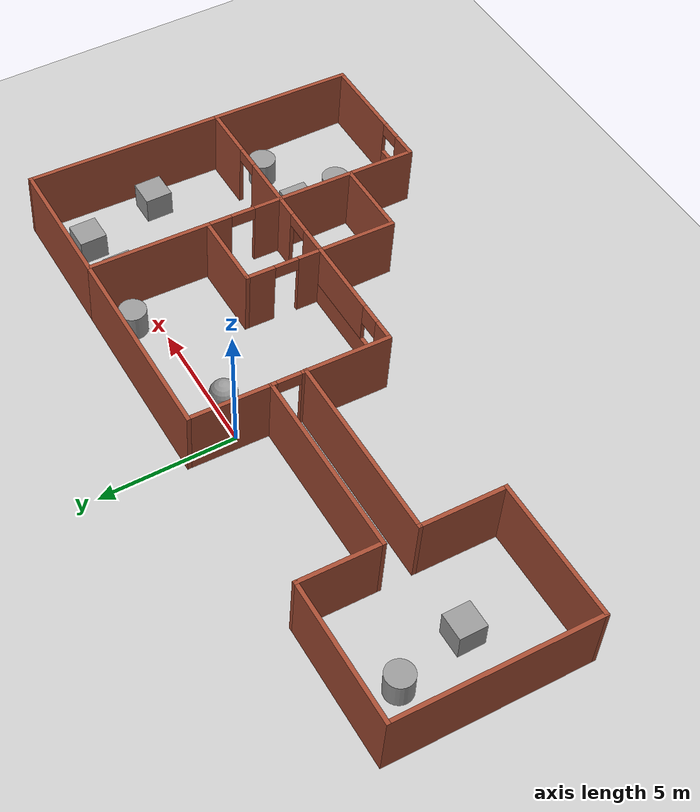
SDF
<sdf version="1.6">
 <world name="default">
  <light name="sun" type="directional">
   <pose>0 0 10 0 -0 0</pose>
   <diffuse>0.8 0.8 0.8 1</diffuse>
   <specular>0.2 0.2 0.2 1</specular>
   <attenuation>
    <range>1000</range>
    <constant>0.9</constant>
    <linear>0.01</linear>
    <quadratic>0.001</quadratic>
   </attenuation>
   <direction>-0.5 0.1 -0.9</direction>
  </light>
  <model name="ground_plane">
   <static>1</static>
   <link name="link">
    <collision name="collision">
     <geometry><plane><normal>0 0 1</normal><size>100 100</size></plane></geometry>
     <surface>
      <contact><collide_bitmask>65535</collide_bitmask></contact>
      <friction><ode><mu>100</mu><mu2>50</mu2></ode></friction>
     </surface>
    </collision>
    <visual name="visual">
     <cast_shadows>0</cast_shadows>
     <geometry><plane><normal>0 0 1</normal><size>100 100</size></plane></geometry>
     <material>
      <script><uri>file://media/materials/scripts/gazebo.material</uri><name>Gazebo/Grey</name></script>
     </material>
    </visual>
   </link>
  </model>
  <gravity>0 0 -9.8</gravity>
  <magnetic_field>6e-06 2.3e-05 -4.2e-05</magnetic_field>
  <atmosphere type="adiabatic"/>
  <physics name="default_physics" default="0" type="ode">
   <max_step_size>0.001</max_step_size>
   <real_time_factor>1</real_time_factor>
   <real_time_update_rate>1000</real_time_update_rate>
  </physics>
  <scene><ambient>0.4 0.4 0.4 1</ambient><background>0.7 0.7 0.7 1</background><shadows>1</shadows></scene>
  <audio><device>default</device></audio>
  <spherical_coordinates>
   <surface_model>EARTH_WGS84</surface_model>
   <latitude_deg>0</latitude_deg>
   <longitude_deg>0</longitude_deg>
   <elevation>0</elevation>
   <heading_deg>0</heading_deg>
  </spherical_coordinates>
  <model name="House3">
   <pose>-0.3078 -4.39712 0 0.036863 -0 0</pose>
   <link name="Wall_0">
    <collision name="Wall_0_Collision">
     <geometry><box><size>7.5 0.15 2.5</size></box></geometry>
     <pose>0 0 1.25 0 -0 0</pose>
    </collision>
    <visual name="Wall_0_Visual">
     <pose>0 0 1.25 0 -0 0</pose>
     <geometry><box><size>7.5 0.15 2.5</size></box></geometry>
     <material>
      <script><uri>file://media/materials/scripts/gazebo.material</uri><name>Gazebo/Bricks</name></script>
      <ambient>1 1 1 1</ambient>
     </material>
     <meta><layer>0</layer></meta>
    </visual>
    <pose>12.0775 2.675 0 0 -0 -1.5708</pose>
   </link>
   <link name="Wall_10">
    <pose>3.55254 -1 0 0 -0 0</pose>
    <visual name="Wall_10_Visual_0">
     <pose>-3.3325 0 1.25 0 -0 0</pose>
     <geometry><box><size>0.835 0.15 2.5</size></box></geometry>
     <material>
      <script><uri>file://media/materials/scripts/gazebo.material</uri><name>Gazebo/Bricks</name></script>
      <ambient>1 1 1 1</ambient>
     </material>
     <meta><layer>0</layer></meta>
    </visual>
    <collision name="Wall_10_Collision_0">
     <geometry><box><size>0.835 0.15 2.5</size></box></geometry>
     <pose>-3.3325 0 1.25 0 -0 0</pose>
    </collision>
    <visual name="Wall_10_Visual_1">
     <pose>3.2675 0 1.25 0 -0 0</pose>
     <geometry><box><size>0.965 0.15 2.5</size></box></geometry>
     <material>
      <script><uri>file://media/materials/scripts/gazebo.material</uri><name>Gazebo/Bricks</name></script>
      <ambient>1 1 1 1</ambient>
     </material>
     <meta><layer>0</layer></meta>
    </visual>
    <collision name="Wall_10_Collision_1">
     <geometry><box><size>0.965 0.15 2.5</size></box></geometry>
     <pose>3.2675 0 1.25 0 -0 0</pose>
    </collision>
    <visual name="Wall_10_Visual_2">
     <pose>-0.515 0 0.45 0 -0 0</pose>
     <geometry><box><size>4.8 0.15 0.9</size></box></geometry>
     <material>
      <script><uri>file://media/materials/scripts/gazebo.material</uri><name>Gazebo/Bricks</name></script>
      <ambient>1 1 1 1</ambient>
     </material>
     <meta><layer>0</layer></meta>
    </visual>
    <collision name="Wall_10_Collision_2">
     <geometry><box><size>4.8 0.15 0.9</size></box></geometry>
     <pose>-0.515 0 0.45 0 -0 0</pose>
    </collision>
    <visual name="Wall_10_Visual_3">
     <pose>-0.115 0 1.7 0 -0 0</pose>
     <geometry><box><size>4 0.15 1.6</size></box></geometry>
     <material>
      <script><uri>file://media/materials/scripts/gazebo.material</uri><name>Gazebo/Bricks</name></script>
      <ambient>1 1 1 1</ambient>
     </material>
     <meta><layer>0</layer></meta>
    </visual>
    <collision name="Wall_10_Collision_3">
     <geometry><box><size>4 0.15 1.6</size></box></geometry>
     <pose>-0.115 0 1.7 0 -0 0</pose>
    </collision>
    <visual name="Wall_10_Visual_4">
     <pose>-2.515 0 2.1 0 -0 0</pose>
     <geometry><box><size>0.8 0.15 0.8</size></box></geometry>
     <material>
      <script><uri>file://media/materials/scripts/gazebo.material</uri><name>Gazebo/Bricks</name></script>
      <ambient>1 1 1 1</ambient>
     </material>
     <meta><layer>0</layer></meta>
    </visual>
    <collision name="Wall_10_Collision_4">
     <geometry><box><size>0.8 0.15 0.8</size></box></geometry>
     <pose>-2.515 0 2.1 0 -0 0</pose>
    </collision>
    <visual name="Wall_10_Visual_5">
     <pose>2.335 0 2.25 0 -0 0</pose>
     <geometry><box><size>0.9 0.15 0.5</size></box></geometry>
     <material>
      <script><uri>file://media/materials/scripts/gazebo.material</uri><name>Gazebo/Bricks</name></script>
      <ambient>1 1 1 1</ambient>
     </material>
     <meta><layer>0</layer></meta>
    </visual>
    <collision name="Wall_10_Collision_5">
     <geometry><box><size>0.9 0.15 0.5</size></box></geometry>
     <pose>2.335 0 2.25 0 -0 0</pose>
    </collision>
   </link>
   <link name="Wall_14">
    <pose>7.22753 0.425 0 0 -0 1.5708</pose>
    <visual name="Wall_14_Visual_0">
     <pose>-0.9425 0 1.25 0 -0 0</pose>
     <geometry><box><size>1.115 0.15 2.5</size></box></geometry>
     <material>
      <script><uri>file://media/materials/scripts/gazebo.material</uri><name>Gazebo/Bricks</name></script>
      <ambient>1 1 1 1</ambient>
     </material>
     <meta><layer>0</layer></meta>
    </visual>
    <collision name="Wall_14_Collision_0">
     <geometry><box><size>1.115 0.15 2.5</size></box></geometry>
     <pose>-0.9425 0 1.25 0 -0 0</pose>
    </collision>
    <visual name="Wall_14_Visual_1">
     <pose>1.0075 0 1.25 0 -0 0</pose>
     <geometry><box><size>0.985 0.15 2.5</size></box></geometry>
     <material>
      <script><uri>file://media/materials/scripts/gazebo.material</uri><name>Gazebo/Bricks</name></script>
      <ambient>1 1 1 1</ambient>
     </material>
     <meta><layer>0</layer></meta>
    </visual>
    <collision name="Wall_14_Collision_1">
     <geometry><box><size>0.985 0.15 2.5</size></box></geometry>
     <pose>1.0075 0 1.25 0 -0 0</pose>
    </collision>
    <visual name="Wall_14_Visual_2">
     <pose>0.065 0 2.25 0 -0 0</pose>
     <geometry><box><size>0.9 0.15 0.5</size></box></geometry>
     <material>
      <script><uri>file://media/materials/scripts/gazebo.material</uri><name>Gazebo/Bricks</name></script>
      <ambient>1 1 1 1</ambient>
     </material>
     <meta><layer>0</layer></meta>
    </visual>
    <collision name="Wall_14_Collision_2">
     <geometry><box><size>0.9 0.15 0.5</size></box></geometry>
     <pose>0.065 0 2.25 0 -0 0</pose>
    </collision>
   </link>
   <link name="Wall_17">
    <collision name="Wall_17_Collision">
     <geometry><box><size>3 0.15 2.5</size></box></geometry>
     <pose>0 0 1.25 0 -0 0</pose>
    </collision>
    <visual name="Wall_17_Visual">
     <pose>0 0 1.25 0 -0 0</pose>
     <geometry><box><size>3 0.15 2.5</size></box></geometry>
     <material>
      <script><uri>file://media/materials/scripts/gazebo.material</uri><name>Gazebo/Bricks</name></script>
      <ambient>1 1 1 1</ambient>
     </material>
     <meta><layer>0</layer></meta>
    </visual>
    <pose>5.80253 1.85 0 0 -0 3.14159</pose>
   </link>
   <link name="Wall_18">
    <pose>4.37753 0.425 0 0 -0 -1.5708</pose>
    <visual name="Wall_18_Visual_0">
     <pose>-0.9325 0 1.25 0 -0 0</pose>
     <geometry><box><size>1.135 0.15 2.5</size></box></geometry>
     <material>
      <script><uri>file://media/materials/scripts/gazebo.material</uri><name>Gazebo/Bricks</name></script>
      <ambient>1 1 1 1</ambient>
     </material>
     <meta><layer>0</layer></meta>
    </visual>
    <collision name="Wall_18_Collision_0">
     <geometry><box><size>1.135 0.15 2.5</size></box></geometry>
     <pose>-0.9325 0 1.25 0 -0 0</pose>
    </collision>
    <visual name="Wall_18_Visual_1">
     <pose>1.0175 0 1.25 0 -0 0</pose>
     <geometry><box><size>0.965 0.15 2.5</size></box></geometry>
     <material>
      <script><uri>file://media/materials/scripts/gazebo.material</uri><name>Gazebo/Bricks</name></script>
      <ambient>1 1 1 1</ambient>
     </material>
     <meta><layer>0</layer></meta>
    </visual>
    <collision name="Wall_18_Collision_1">
     <geometry><box><size>0.965 0.15 2.5</size></box></geometry>
     <pose>1.0175 0 1.25 0 -0 0</pose>
    </collision>
    <visual name="Wall_18_Visual_2">
     <pose>0.085 0 2.25 0 -0 0</pose>
     <geometry><box><size>0.9 0.15 0.5</size></box></geometry>
     <material>
      <script><uri>file://media/materials/scripts/gazebo.material</uri><name>Gazebo/Bricks</name></script>
      <ambient>1 1 1 1</ambient>
     </material>
     <meta><layer>0</layer></meta>
    </visual>
    <collision name="Wall_18_Collision_2">
     <geometry><box><size>0.9 0.15 0.5</size></box></geometry>
     <pose>0.085 0 2.25 0 -0 0</pose>
    </collision>
   </link>
   <link name="Wall_2">
    <collision name="Wall_2_Collision">
     <geometry><box><size>5.5 0.15 2.5</size></box></geometry>
     <pose>0 0 1.25 0 -0 0</pose>
    </collision>
    <visual name="Wall_2_Visual">
     <pose>0 0 1.25 0 -0 0</pose>
     <geometry><box><size>5.5 0.15 2.5</size></box></geometry>
     <material>
      <script><uri>file://media/materials/scripts/gazebo.material</uri><name>Gazebo/Bricks</name></script>
      <ambient>1 1 1 1</ambient>
     </material>
     <meta><layer>0</layer></meta>
    </visual>
    <pose>12.0775 -3.675 0 0 -0 -1.5708</pose>
   </link>
   <link name="Wall_20">
    <collision name="Wall_20_Collision">
     <geometry><box><size>3 0.15 2.5</size></box></geometry>
     <pose>0 0 1.25 0 -0 0</pose>
    </collision>
    <visual name="Wall_20_Visual">
     <pose>0 0 1.25 0 -0 0</pose>
     <geometry><box><size>3 0.15 2.5</size></box></geometry>
     <material>
      <script><uri>file://media/materials/scripts/gazebo.material</uri><name>Gazebo/Bricks</name></script>
      <ambient>1 1 1 1</ambient>
     </material>
     <meta><layer>0</layer></meta>
    </visual>
    <pose>4.37753 -2.425 0 0 -0 -1.5708</pose>
   </link>
   <link name="Wall_22">
    <collision name="Wall_22_Collision">
     <geometry><box><size>3 0.15 2.5</size></box></geometry>
     <pose>0 0 1.25 0 -0 0</pose>
    </collision>
    <visual name="Wall_22_Visual">
     <pose>0 0 1.25 0 -0 0</pose>
     <geometry><box><size>3 0.15 2.5</size></box></geometry>
     <material>
      <script><uri>file://media/materials/scripts/gazebo.material</uri><name>Gazebo/Bricks</name></script>
      <ambient>1 1 1 1</ambient>
     </material>
     <meta><layer>0</layer></meta>
    </visual>
    <pose>5.80253 -3.85 0 0 -0 0</pose>
   </link>
   <link name="Wall_23">
    <collision name="Wall_23_Collision">
     <geometry><box><size>3 0.15 2.5</size></box></geometry>
     <pose>0 0 1.25 0 -0 0</pose>
    </collision>
    <visual name="Wall_23_Visual">
     <pose>0 0 1.25 0 -0 0</pose>
     <geometry><box><size>3 0.15 2.5</size></box></geometry>
     <material>
      <script><uri>file://media/materials/scripts/gazebo.material</uri><name>Gazebo/Bricks</name></script>
      <ambient>1 1 1 1</ambient>
     </material>
     <meta><layer>0</layer></meta>
    </visual>
    <pose>7.22753 -2.425 0 0 -0 1.5708</pose>
   </link>
   <link name="Wall_25">
    <collision name="Wall_25_Collision">
     <geometry><box><size>4.65 0.15 2.5</size></box></geometry>
     <pose>0 0 1.25 0 -0 0</pose>
    </collision>
    <visual name="Wall_25_Visual">
     <pose>0 0 1.25 0 -0 0</pose>
     <geometry><box><size>4.65 0.15 2.5</size></box></geometry>
     <material>
      <script><uri>file://media/materials/scripts/gazebo.material</uri><name>Gazebo/Bricks</name></script>
      <ambient>1 1 1 1</ambient>
     </material>
     <meta><layer>0</layer></meta>
    </visual>
    <pose>7.22753 4.1 0 0 -0 1.5708</pose>
   </link>
   <link name="Wall_29">
    <pose>9.65254 -6.35 0 0 -0 3.14159</pose>
    <visual name="Wall_29_Visual_0">
     <pose>-0.8825 0 1.25 0 -0 0</pose>
     <geometry><box><size>3.235 0.15 2.5</size></box></geometry>
     <material>
      <script><uri>file://media/materials/scripts/gazebo.material</uri><name>Gazebo/Bricks</name></script>
      <ambient>1 1 1 1</ambient>
     </material>
     <meta><layer>0</layer></meta>
    </visual>
    <collision name="Wall_29_Collision_0">
     <geometry><box><size>3.235 0.15 2.5</size></box></geometry>
     <pose>-0.8825 0 1.25 0 -0 0</pose>
    </collision>
    <visual name="Wall_29_Visual_1">
     <pose>1.6175 0 0.6 0 -0 0</pose>
     <geometry><box><size>1.765 0.15 1.2</size></box></geometry>
     <material>
      <script><uri>file://media/materials/scripts/gazebo.material</uri><name>Gazebo/Bricks</name></script>
      <ambient>1 1 1 1</ambient>
     </material>
     <meta><layer>0</layer></meta>
    </visual>
    <collision name="Wall_29_Collision_1">
     <geometry><box><size>1.765 0.15 1.2</size></box></geometry>
     <pose>1.6175 0 0.6 0 -0 0</pose>
    </collision>
    <visual name="Wall_29_Visual_2">
     <pose>2.0175 0 1.85 0 -0 0</pose>
     <geometry><box><size>0.965 0.15 1.3</size></box></geometry>
     <material>
      <script><uri>file://media/materials/scripts/gazebo.material</uri><name>Gazebo/Bricks</name></script>
      <ambient>1 1 1 1</ambient>
     </material>
     <meta><layer>0</layer></meta>
    </visual>
    <collision name="Wall_29_Collision_2">
     <geometry><box><size>0.965 0.15 1.3</size></box></geometry>
     <pose>2.0175 0 1.85 0 -0 0</pose>
    </collision>
    <visual name="Wall_29_Visual_3">
     <pose>1.135 0 2.25 0 -0 0</pose>
     <geometry><box><size>0.8 0.15 0.5</size></box></geometry>
     <material>
      <script><uri>file://media/materials/scripts/gazebo.material</uri><name>Gazebo/Bricks</name></script>
      <ambient>1 1 1 1</ambient>
     </material>
     <meta><layer>0</layer></meta>
    </visual>
    <collision name="Wall_29_Collision_3">
     <geometry><box><size>0.8 0.15 0.5</size></box></geometry>
     <pose>1.135 0 2.25 0 -0 0</pose>
    </collision>
   </link>
   <link name="Wall_32">
    <collision name="Wall_32_Collision">
     <geometry><box><size>2.65 0.15 2.5</size></box></geometry>
     <pose>0 0 1.25 0 -0 0</pose>
    </collision>
    <visual name="Wall_32_Visual">
     <pose>0 0 1.25 0 -0 0</pose>
     <geometry><box><size>2.65 0.15 2.5</size></box></geometry>
     <material>
      <script><uri>file://media/materials/scripts/gazebo.material</uri><name>Gazebo/Bricks</name></script>
      <ambient>1 1 1 1</ambient>
     </material>
     <meta><layer>0</layer></meta>
    </visual>
    <pose>7.22753 -5.1 0 0 -0 1.5708</pose>
   </link>
   <link name="Wall_35">
    <pose>9.65254 -1 0 0 -0 0</pose>
    <visual name="Wall_35_Visual_0">
     <pose>-1.48755 0 1.25 0 -0 0</pose>
     <geometry><box><size>2.02489 0.15 2.5</size></box></geometry>
     <material>
      <script><uri>file://media/materials/scripts/gazebo.material</uri><name>Gazebo/Bricks</name></script>
      <ambient>1 1 1 1</ambient>
     </material>
     <meta><layer>0</layer></meta>
    </visual>
    <collision name="Wall_35_Collision_0">
     <geometry><box><size>2.02489 0.15 2.5</size></box></geometry>
     <pose>-1.48755 0 1.25 0 -0 0</pose>
    </collision>
    <visual name="Wall_35_Visual_1">
     <pose>1.46245 0 1.25 0 -0 0</pose>
     <geometry><box><size>2.07511 0.15 2.5</size></box></geometry>
     <material>
      <script><uri>file://media/materials/scripts/gazebo.material</uri><name>Gazebo/Bricks</name></script>
      <ambient>1 1 1 1</ambient>
     </material>
     <meta><layer>0</layer></meta>
    </visual>
    <collision name="Wall_35_Collision_1">
     <geometry><box><size>2.07511 0.15 2.5</size></box></geometry>
     <pose>1.46245 0 1.25 0 -0 0</pose>
    </collision>
    <visual name="Wall_35_Visual_2">
     <pose>-0.025107 0 2.25 0 -0 0</pose>
     <geometry><box><size>0.9 0.15 0.5</size></box></geometry>
     <material>
      <script><uri>file://media/materials/scripts/gazebo.material</uri><name>Gazebo/Bricks</name></script>
      <ambient>1 1 1 1</ambient>
     </material>
     <meta><layer>0</layer></meta>
    </visual>
    <collision name="Wall_35_Collision_2">
     <geometry><box><size>0.9 0.15 0.5</size></box></geometry>
     <pose>-0.025107 0 2.25 0 -0 0</pose>
    </collision>
   </link>
   <link name="Wall_37">
    <collision name="Wall_37_Collision">
     <geometry><box><size>7 0.15 2.5</size></box></geometry>
     <pose>0 0 1.25 0 -0 0</pose>
    </collision>
    <visual name="Wall_37_Visual">
     <pose>0 0 1.25 0 -0 0</pose>
     <geometry><box><size>7 0.15 2.5</size></box></geometry>
     <material>
      <script><uri>file://media/materials/scripts/gazebo.material</uri><name>Gazebo/Bricks</name></script>
      <ambient>1 1 1 1</ambient>
     </material>
     <meta><layer>0</layer></meta>
    </visual>
    <pose>-3.55247 3.379 0 0 -0 3.14159</pose>
   </link>
   <link name="Wall_39">
    <collision name="Wall_39_Collision">
     <geometry><box><size>7 0.15 2.5</size></box></geometry>
     <pose>0 0 1.25 0 -0 0</pose>
    </collision>
    <visual name="Wall_39_Visual">
     <pose>0 0 1.25 0 -0 0</pose>
     <geometry><box><size>7 0.15 2.5</size></box></geometry>
     <material>
      <script><uri>file://media/materials/scripts/gazebo.material</uri><name>Gazebo/Bricks</name></script>
      <ambient>1 1 1 1</ambient>
     </material>
     <meta><layer>0</layer></meta>
    </visual>
    <pose>-3.53946 2.117 0 0 -0 3.14159</pose>
   </link>
   <link name="Wall_4">
    <collision name="Wall_4_Collision">
     <geometry><box><size>5 0.15 2.5</size></box></geometry>
     <pose>0 0 1.25 0 -0 0</pose>
    </collision>
    <visual name="Wall_4_Visual">
     <pose>0 0 1.25 0 -0 0</pose>
     <geometry><box><size>5 0.15 2.5</size></box></geometry>
     <material>
      <script><uri>file://media/materials/scripts/gazebo.material</uri><name>Gazebo/Bricks</name></script>
      <ambient>1 1 1 1</ambient>
     </material>
     <meta><layer>0</layer></meta>
    </visual>
    <pose>9.65254 6.35 0 0 -0 3.14159</pose>
   </link>
   <link name="Wall_41">
    <collision name="Wall_41_Collision">
     <geometry><box><size>3.121 0.15 2.5</size></box></geometry>
     <pose>0 0 1.25 0 -0 0</pose>
    </collision>
    <visual name="Wall_41_Visual">
     <pose>0 0 1.25 0 -0 0</pose>
     <geometry><box><size>3.121 0.15 2.5</size></box></geometry>
     <material>
      <script><uri>file://media/materials/scripts/gazebo.material</uri><name>Gazebo/Bricks</name></script>
      <ambient>1 1 1 1</ambient>
     </material>
     <meta><layer>0</layer></meta>
    </visual>
    <pose>-6.97747 4.8645 0 0 -0 1.5708</pose>
   </link>
   <link name="Wall_44">
    <collision name="Wall_44_Collision">
     <geometry><box><size>3.267 0.15 2.5</size></box></geometry>
     <pose>0 0 1.25 0 -0 0</pose>
    </collision>
    <visual name="Wall_44_Visual">
     <pose>0 0 1.25 0 -0 0</pose>
     <geometry><box><size>3.267 0.15 2.5</size></box></geometry>
     <material>
      <script><uri>file://media/materials/scripts/gazebo.material</uri><name>Gazebo/Bricks</name></script>
      <ambient>1 1 1 1</ambient>
     </material>
     <meta><layer>0</layer></meta>
    </visual>
    <pose>-6.96446 0.5585 0 0 -0 -1.5708</pose>
   </link>
   <link name="Wall_46">
    <collision name="Wall_46_Collision">
     <geometry><box><size>5.25 0.15 2.5</size></box></geometry>
     <pose>0 0 1.25 0 -0 0</pose>
    </collision>
    <visual name="Wall_46_Visual">
     <pose>0 0 1.25 0 -0 0</pose>
     <geometry><box><size>5.25 0.15 2.5</size></box></geometry>
     <material>
      <script><uri>file://media/materials/scripts/gazebo.material</uri><name>Gazebo/Bricks</name></script>
      <ambient>1 1 1 1</ambient>
     </material>
     <meta><layer>0</layer></meta>
    </visual>
    <pose>-9.52746 6.35 0 0 -0 3.14159</pose>
   </link>
   <link name="Wall_47">
    <collision name="Wall_47_Collision">
     <geometry><box><size>7.5 0.15 2.5</size></box></geometry>
     <pose>0 0 1.25 0 -0 0</pose>
    </collision>
    <visual name="Wall_47_Visual">
     <pose>0 0 1.25 0 -0 0</pose>
     <geometry><box><size>7.5 0.15 2.5</size></box></geometry>
     <material>
      <script><uri>file://media/materials/scripts/gazebo.material</uri><name>Gazebo/Bricks</name></script>
      <ambient>1 1 1 1</ambient>
     </material>
     <meta><layer>0</layer></meta>
    </visual>
    <pose>-12.0775 2.675 0 0 -0 -1.5708</pose>
   </link>
   <link name="Wall_48">
    <collision name="Wall_48_Collision">
     <geometry><box><size>5.26314 0.15 2.5</size></box></geometry>
     <pose>0 0 1.25 0 -0 0</pose>
    </collision>
    <visual name="Wall_48_Visual">
     <pose>0 0 1.25 0 -0 0</pose>
     <geometry><box><size>5.26314 0.15 2.5</size></box></geometry>
     <material>
      <script><uri>file://media/materials/scripts/gazebo.material</uri><name>Gazebo/Bricks</name></script>
      <ambient>1 1 1 1</ambient>
     </material>
     <meta><layer>0</layer></meta>
    </visual>
    <pose>-9.52097 -1 0 0 -0 0</pose>
   </link>
   <link name="Wall_6">
    <collision name="Wall_6_Collision">
     <geometry><box><size>7.5 0.15 2.5</size></box></geometry>
     <pose>0 0 1.25 0 -0 0</pose>
    </collision>
    <visual name="Wall_6_Visual">
     <pose>0 0 1.25 0 -0 0</pose>
     <geometry><box><size>7.5 0.15 2.5</size></box></geometry>
     <material>
      <script><uri>file://media/materials/scripts/gazebo.material</uri><name>Gazebo/Bricks</name></script>
      <ambient>1 1 1 1</ambient>
     </material>
     <meta><layer>0</layer></meta>
    </visual>
    <pose>3.55254 6.35 0 0 -0 3.14159</pose>
   </link>
   <link name="Wall_8">
    <pose>-0.122465 2.675 0 0 -0 -1.5708</pose>
    <visual name="Wall_8_Visual_0">
     <pose>-2.13651 0 1.25 0 -0 0</pose>
     <geometry><box><size>3.22699 0.15 2.5</size></box></geometry>
     <material>
      <script><uri>file://media/materials/scripts/gazebo.material</uri><name>Gazebo/Bricks</name></script>
      <ambient>1 1 1 1</ambient>
     </material>
     <meta><layer>0</layer></meta>
    </visual>
    <collision name="Wall_8_Collision_0">
     <geometry><box><size>3.22699 0.15 2.5</size></box></geometry>
     <pose>-2.13651 0 1.25 0 -0 0</pose>
    </collision>
    <visual name="Wall_8_Visual_1">
     <pose>2.0635 0 1.25 0 -0 0</pose>
     <geometry><box><size>3.37301 0.15 2.5</size></box></geometry>
     <material>
      <script><uri>file://media/materials/scripts/gazebo.material</uri><name>Gazebo/Bricks</name></script>
      <ambient>1 1 1 1</ambient>
     </material>
     <meta><layer>0</layer></meta>
    </visual>
    <collision name="Wall_8_Collision_1">
     <geometry><box><size>3.37301 0.15 2.5</size></box></geometry>
     <pose>2.0635 0 1.25 0 -0 0</pose>
    </collision>
    <visual name="Wall_8_Visual_2">
     <pose>-0.073011 0 2.25 0 -0 0</pose>
     <geometry><box><size>0.9 0.15 0.5</size></box></geometry>
     <material>
      <script><uri>file://media/materials/scripts/gazebo.material</uri><name>Gazebo/Bricks</name></script>
      <ambient>1 1 1 1</ambient>
     </material>
     <meta><layer>0</layer></meta>
    </visual>
    <collision name="Wall_8_Collision_2">
     <geometry><box><size>0.9 0.15 0.5</size></box></geometry>
     <pose>-0.073011 0 2.25 0 -0 0</pose>
    </collision>
   </link>
   <static>1</static>
  </model>
  <model name="unit_box">
   <pose>8.06984 -6.85196 0.5 0 0 -0.021297</pose>
   <link name="link">
    <inertial>
     <mass>1</mass>
     <inertia>
      <ixx>0.166667</ixx>
      <ixy>0</ixy>
      <ixz>0</ixz>
      <iyy>0.166667</iyy>
      <iyz>0</iyz>
      <izz>0.166667</izz>
     </inertia>
    </inertial>
    <collision name="collision"><geometry><box><size>1 1 1</size></box></geometry></collision>
    <visual name="visual">
     <geometry><box><size>1 1 1</size></box></geometry>
     <material>
      <script><name>Gazebo/Grey</name><uri>file://media/materials/scripts/gazebo.material</uri></script>
     </material>
    </visual>
   </link>
  </model>
  <model name="unit_cylinder">
   <pose>8.24916 -8.52797 0.499999 2e-06 2e-06 0.00944</pose>
   <link name="link">
    <inertial>
     <mass>1</mass>
     <inertia><ixx>0.145833</ixx><ixy>0</ixy><ixz>0</ixz><iyy>0.145833</iyy><iyz>0</iyz><izz>0.125</izz></inertia>
    </inertial>
    <collision name="collision">
     <geometry><cylinder><radius>0.5</radius><length>1</length></cylinder></geometry>
    </collision>
    <visual name="visual">
     <geometry><cylinder><radius>0.5</radius><length>1</length></cylinder></geometry>
     <material>
      <script><name>Gazebo/Grey</name><uri>file://media/materials/scripts/gazebo.material</uri></script>
     </material>
    </visual>
   </link>
  </model>
  <model name="unit_cylinder_0">
   <pose>10.3727 -6.61304 0.499997 3e-06 4e-06 -0</pose>
   <link name="link">
    <inertial>
     <mass>1</mass>
     <inertia><ixx>0.145833</ixx><ixy>0</ixy><ixz>0</ixz><iyy>0.145833</iyy><iyz>0</iyz><izz>0.125</izz></inertia>
    </inertial>
    <collision name="collision">
     <geometry><cylinder><radius>0.5</radius><length>1</length></cylinder></geometry>
    </collision>
    <visual name="visual">
     <geometry><cylinder><radius>0.5</radius><length>1</length></cylinder></geometry>
     <material>
      <script><name>Gazebo/Grey</name><uri>file://media/materials/scripts/gazebo.material</uri></script>
     </material>
    </visual>
   </link>
  </model>
  <model name="unit_box_0">
   <pose>8.07207 0.238276 0.5 0 -0 0</pose>
   <link name="link">
    <inertial>
     <mass>1</mass>
     <inertia>
      <ixx>0.166667</ixx>
      <ixy>0</ixy>
      <ixz>0</ixz>
      <iyy>0.166667</iyy>
      <iyz>0</iyz>
      <izz>0.166667</izz>
     </inertia>
    </inertial>
    <collision name="collision"><geometry><box><size>1 1 1</size></box></geometry></collision>
    <visual name="visual">
     <geometry><box><size>1 1 1</size></box></geometry>
     <material>
      <script><name>Gazebo/Grey</name><uri>file://media/materials/scripts/gazebo.material</uri></script>
     </material>
    </visual>
   </link>
  </model>
  <model name="unit_box_1">
   <pose>10.1001 0.602781 0.5 0 -0 0</pose>
   <link name="link">
    <inertial>
     <mass>1</mass>
     <inertia>
      <ixx>0.166667</ixx>
      <ixy>0</ixy>
      <ixz>0</ixz>
      <iyy>0.166667</iyy>
      <iyz>0</iyz>
      <izz>0.166667</izz>
     </inertia>
    </inertial>
    <collision name="collision"><geometry><box><size>1 1 1</size></box></geometry></collision>
    <visual name="visual">
     <geometry><box><size>1 1 1</size></box></geometry>
     <material>
      <script><name>Gazebo/Grey</name><uri>file://media/materials/scripts/gazebo.material</uri></script>
     </material>
    </visual>
   </link>
  </model>
  <model name="unit_sphere">
   <pose>1.54539 -0.364149 0.5 0 -0 0</pose>
   <link name="link">
    <inertial>
     <mass>1</mass>
     <inertia><ixx>0.1</ixx><ixy>0</ixy><ixz>0</ixz><iyy>0.1</iyy><iyz>0</iyz><izz>0.1</izz></inertia>
    </inertial>
    <collision name="collision"><geometry><sphere><radius>0.5</radius></sphere></geometry></collision>
    <visual name="visual">
     <geometry><sphere><radius>0.5</radius></sphere></geometry>
     <material>
      <script><name>Gazebo/Grey</name><uri>file://media/materials/scripts/gazebo.material</uri></script>
     </material>
    </visual>
   </link>
  </model>
  <model name="unit_cylinder_1">
   <pose>-10.4908 0.189742 0.499997 3e-06 4e-06 -0</pose>
   <link name="link">
    <inertial>
     <mass>1</mass>
     <inertia><ixx>0.145833</ixx><ixy>0</ixy><ixz>0</ixz><iyy>0.145833</iyy><iyz>0</iyz><izz>0.125</izz></inertia>
    </inertial>
    <collision name="collision">
     <geometry><cylinder><radius>0.5</radius><length>1</length></cylinder></geometry>
    </collision>
    <visual name="visual">
     <geometry><cylinder><radius>0.5</radius><length>1</length></cylinder></geometry>
     <material>
      <script><name>Gazebo/Grey</name><uri>file://media/materials/scripts/gazebo.material</uri></script>
     </material>
    </visual>
   </link>
  </model>
  <model name="unit_box_2">
   <pose>-9.89998 -2.41958 0.5 0 -0 0</pose>
   <link name="link">
    <inertial>
     <mass>1</mass>
     <inertia>
      <ixx>0.166667</ixx>
      <ixy>0</ixy>
      <ixz>0</ixz>
      <iyy>0.166667</iyy>
      <iyz>0</iyz>
      <izz>0.166667</izz>
     </inertia>
    </inertial>
    <collision name="collision"><geometry><box><size>1 1 1</size></box></geometry></collision>
    <visual name="visual">
     <geometry><box><size>1 1 1</size></box></geometry>
     <material>
      <script><name>Gazebo/Grey</name><uri>file://media/materials/scripts/gazebo.material</uri></script>
     </material>
    </visual>
   </link>
  </model>
  <model name="unit_box_3">
   <pose>10.9053 -2.37923 0.5 0 -0 0</pose>
   <link name="link">
    <inertial>
     <mass>1</mass>
     <inertia>
      <ixx>0.166667</ixx>
      <ixy>0</ixy>
      <ixz>0</ixz>
      <iyy>0.166667</iyy>
      <iyz>0</iyz>
      <izz>0.166667</izz>
     </inertia>
    </inertial>
    <collision name="collision"><geometry><box><size>1 1 1</size></box></geometry></collision>
    <visual name="visual">
     <geometry><box><size>1 1 1</size></box></geometry>
     <material>
      <script><name>Gazebo/Grey</name><uri>file://media/materials/scripts/gazebo.material</uri></script>
     </material>
    </visual>
   </link>
  </model>
  <model name="unit_cylinder_2">
   <pose>5.94466 0.838344 0.5 0 -0 0</pose>
   <link name="link">
    <inertial>
     <mass>1</mass>
     <inertia><ixx>0.145833</ixx><ixy>0</ixy><ixz>0</ixz><iyy>0.145833</iyy><iyz>0</iyz><izz>0.125</izz></inertia>
    </inertial>
    <collision name="collision">
     <geometry><cylinder><radius>0.5</radius><length>1</length></cylinder></geometry>
    </collision>
    <visual name="visual">
     <geometry><cylinder><radius>0.5</radius><length>1</length></cylinder></geometry>
     <material>
      <script><name>Gazebo/Grey</name><uri>file://media/materials/scripts/gazebo.material</uri></script>
     </material>
    </visual>
   </link>
  </model>
 </world>
</sdf>
